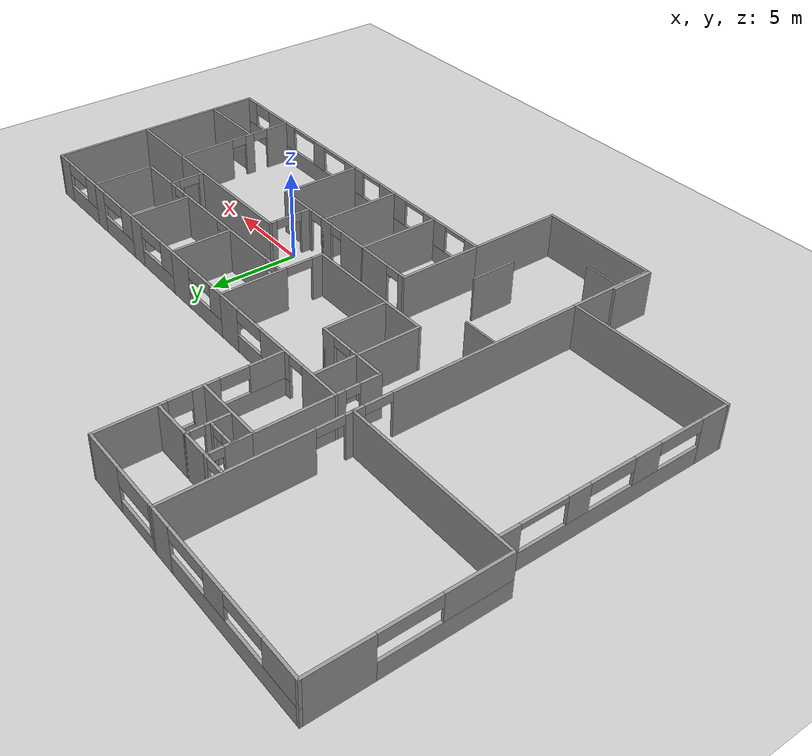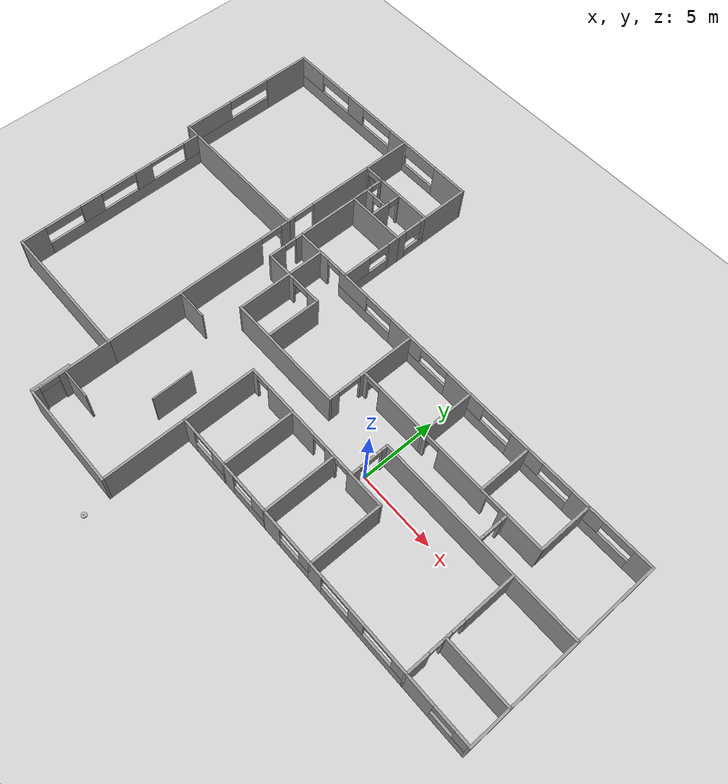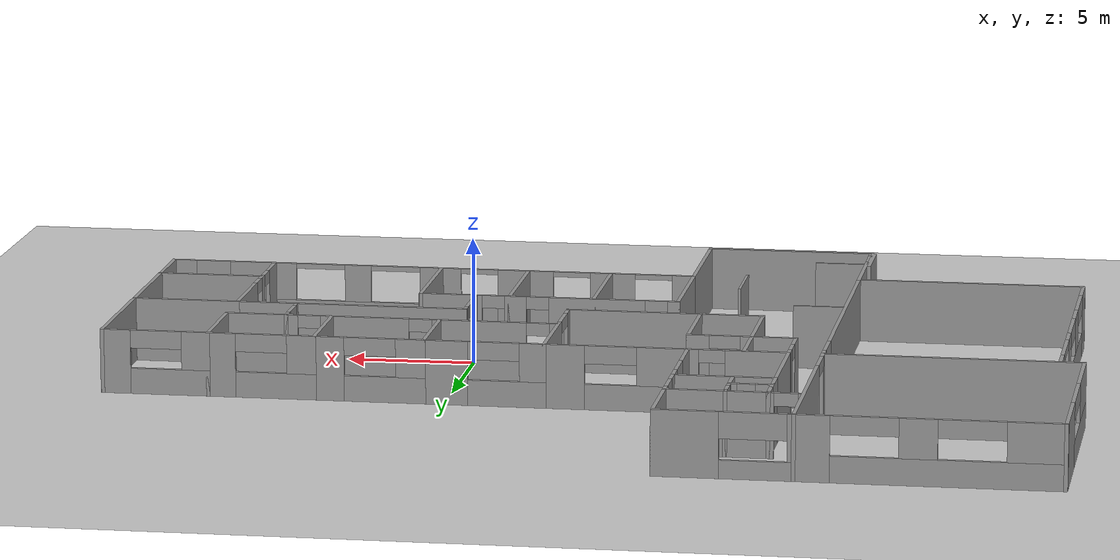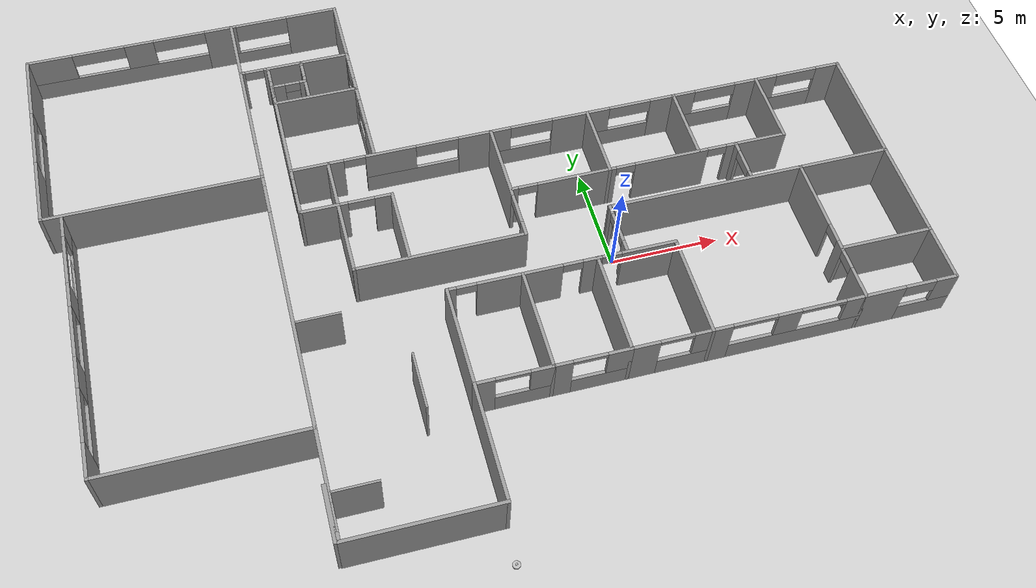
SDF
<sdf version="1.5">
 <world name="default">
  <include><uri>model://sun</uri></include>
  <include><uri>model://ground_plane</uri></include>
  <include><uri>model://iRobot</uri><pose>-8 -12.7 0.05 0 0 0</pose></include>
  <include><uri>model://CentroPiaggio</uri><name>CentroPiaggioMap</name></include>
 </world>
</sdf>

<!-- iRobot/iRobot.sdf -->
<sdf version='1.5'>
  <model name='iRobot'>
    <link name='base_link'>
      <pose>0 0 0 0 -0 0</pose>
      <inertial>
        <pose>1.39958e-05 0 6.49804e-08 0 -0 0</pose>
        <mass>10.003</mass>
        <inertia>
          <ixx>0.425054</ixx>
          <ixy>0</ixy>
          <ixz>-5.59999e-06</ixz>
          <iyy>0.425033</iyy>
          <iyz>-4.08016e-18</iyz>
          <izz>0.850071</izz>
        </inertia>
      </inertial>
      <collision name='base_link_collision'>
        <pose>0 0 0 0 -0 0</pose>
        <geometry>
          <cylinder>
            <length>0.08</length>
            <radius>0.17</radius>
          </cylinder>
        </geometry>
      </collision>
      <collision name='base_link_collision_base_link_1'>
        <pose>0.14 0 0.04 0 -0 0</pose>
        <geometry>
          <cylinder>
            <length>0.01</length>
            <radius>0.01</radius>
          </cylinder>
        </geometry>
      </collision>
      <collision name='base_link_collision_base_link_2'>
        <pose>0 0 0.065 0 -0 0</pose>
        <geometry>
          <cylinder>
            <length>0.05</length>
            <radius>0.045</radius>
          </cylinder>
        </geometry>
      </collision>
      <collision name='base_link_collision_base_link_3'>
        <pose>0 0.14 -0.02 -1.5708 0 0</pose>
        <geometry>
          <cylinder>
            <length>0.02</length>
            <radius>0.0025</radius>
          </cylinder>
        </geometry>
      </collision>
      <collision name='base_link_collision_base_link_4'>
        <pose>0 -0.14 -0.02 -1.5708 0 0</pose>
        <geometry>
          <cylinder>
            <length>0.02</length>
            <radius>0.0025</radius>
          </cylinder>
        </geometry>
      </collision>
      <visual name='base_link_visual'>
        <pose>0 0 0 0 -0 0</pose>
        <geometry>
          <cylinder>
            <length>0.08</length>
            <radius>0.17</radius>
          </cylinder>
        </geometry>
      </visual>
      <visual name='base_link_visual_base_link_1'>
        <pose>0.14 0 0.04 0 -0 0</pose>
        <geometry>
          <cylinder>
            <length>0.01</length>
            <radius>0.01</radius>
          </cylinder>
        </geometry>
      </visual>
      <visual name='base_link_visual_base_link_2'>
        <pose>0 0 0.065 0 -0 0</pose>
        <geometry>
          <cylinder>
            <length>0.05</length>
            <radius>0.045</radius>
          </cylinder>
        </geometry>
      </visual>
      <visual name='base_link_visual_base_link_3'>
        <pose>0 0.14 -0.02 -1.5708 0 0</pose>
        <geometry>
          <cylinder>
            <length>0.02</length>
            <radius>0.0025</radius>
          </cylinder>
        </geometry>
      </visual>
      <visual name='base_link_visual_base_link_4'>
        <pose>0 -0.14 -0.02 -1.5708 0 0</pose>
        <geometry>
          <cylinder>
            <length>0.02</length>
            <radius>0.0025</radius>
          </cylinder>
        </geometry>
      </visual>
      <velocity_decay/>
      <velocity_decay/>
      <gravity>1</gravity>
      <gravity>1</gravity>
      <velocity_decay/>
      <self_collide>0</self_collide>
      <gravity>1</gravity>
      <sensor name='head_sensor' type='ray'>
        <visualize>1</visualize>
        <update_rate>40</update_rate>
        <ray>
          <scan>
            <horizontal>
              <samples>2160</samples>
              <resolution>1</resolution>
              <min_angle>-3.14159</min_angle>
              <max_angle>3.14159</max_angle>
            </horizontal>
          </scan>
          <range>
            <min>0.2</min>
            <max>26</max>
            <resolution>0.01</resolution>
          </range>
          <noise>
            <type>gaussian</type>
            <mean>0</mean>
            <stddev>0</stddev>
          </noise>
        </ray>
        <plugin name='gazebo_ros_head_hokuyo_controller' filename='libgazebo_ros_laser.so'>
          <robotNamespace/>
          <topicName>laser_scan</topicName>
          <frameName>laser_link</frameName>
        </plugin>
        <pose>0 0 0.065 0 -0 0</pose>
      </sensor>
    </link>
    <link name='left_wheel_link'>
      <pose>0 0.14 -0.02 0 -0 0</pose>
      <inertial>
        <pose>0 0.01 0 -1.5708 0 0</pose>
        <mass>0.5</mass>
        <inertia>
          <ixx>0.00375</ixx>
          <ixy>0</ixy>
          <ixz>0</ixz>
          <iyy>0.00375</iyy>
          <iyz>0</iyz>
          <izz>0.00125</izz>
        </inertia>
      </inertial>
      <collision name='left_wheel_link_collision'>
        <pose>0 0 0 -1.5708 0 0</pose>
        <geometry>
          <cylinder>
            <length>0.02</length>
            <radius>0.03</radius>
          </cylinder>
        </geometry>
        <max_contacts>1</max_contacts>
        <surface>
          <contact>
            <ode>
              <kp>1e+07</kp>
              <kd>1</kd>
              <min_depth>0.0001</min_depth>
            </ode>
          </contact>
          <friction>
            <ode>
              <mu>50</mu>
              <mu2>10</mu2>
              <fdir1>1 0 0</fdir1>
            </ode>
          </friction>
        </surface>
      </collision>
      <visual name='left_wheel_link_visual'>
        <pose>0 0 0 -1.5708 0 0</pose>
        <geometry>
          <cylinder>
            <length>0.02</length>
            <radius>0.03</radius>
          </cylinder>
        </geometry>
        <material>
          <script>
            <name>Gazebo/Grey</name>
            <uri>__default__</uri>
          </script>
        </material>
      </visual>
      <gravity>1</gravity>
      <velocity_decay/>
      <self_collide>0</self_collide>
      <gravity>1</gravity>
    </link>
    <joint name='left_wheel_rot_joint' type='revolute'>
      <child>left_wheel_link</child>
      <parent>base_link</parent>
      <axis>
        <xyz>0 1 0</xyz>
        <limit>
          <lower>-1e+16</lower>
          <upper>1e+16</upper>
        </limit>
        <dynamics>
          <spring_reference>0</spring_reference>
          <spring_stiffness>0</spring_stiffness>
        </dynamics>
        <use_parent_model_frame>1</use_parent_model_frame>
      </axis>
    </joint>
    <link name='right_wheel_link'>
      <pose>0 -0.14 -0.02 0 -0 0</pose>
      <inertial>
        <pose>0 0.01 0 -1.5708 0 0</pose>
        <mass>0.5</mass>
        <inertia>
          <ixx>0.00375</ixx>
          <ixy>0</ixy>
          <ixz>0</ixz>
          <iyy>0.00375</iyy>
          <iyz>0</iyz>
          <izz>0.00125</izz>
        </inertia>
      </inertial>
      <collision name='right_wheel_link_collision'>
        <pose>0 0 0 -1.5708 0 0</pose>
        <geometry>
          <cylinder>
            <length>0.02</length>
            <radius>0.03</radius>
          </cylinder>
        </geometry>
        <max_contacts>1</max_contacts>
        <surface>
          <contact>
            <ode>
              <kp>1e+07</kp>
              <kd>1</kd>
              <min_depth>0.0001</min_depth>
            </ode>
          </contact>
          <friction>
            <ode>
              <mu>50</mu>
              <mu2>10</mu2>
              <fdir1>1 0 0</fdir1>
            </ode>
          </friction>
        </surface>
      </collision>
      <visual name='right_wheel_link_visual'>
        <pose>0 0 0 -1.5708 0 0</pose>
        <geometry>
          <cylinder>
            <length>0.02</length>
            <radius>0.03</radius>
          </cylinder>
        </geometry>
        <material>
          <script>
            <name>Gazebo/Grey</name>
            <uri>__default__</uri>
          </script>
        </material>
      </visual>
      <gravity>1</gravity>
      <velocity_decay/>
      <self_collide>0</self_collide>
      <gravity>1</gravity>
    </link>
    <joint name='right_wheel_rot_joint' type='revolute'>
      <child>right_wheel_link</child>
      <parent>base_link</parent>
      <axis>
        <xyz>0 1 0</xyz>
        <limit>
          <lower>-1e+16</lower>
          <upper>1e+16</upper>
        </limit>
        <dynamics>
          <spring_reference>0</spring_reference>
          <spring_stiffness>0</spring_stiffness>
        </dynamics>
        <use_parent_model_frame>1</use_parent_model_frame>
      </axis>
    </joint>
    <link name='sphere1'>
      <pose>0.14 0 -0.04 0 -0 0</pose>
      <inertial>
        <pose>0 0 0 0 -0 0</pose>
        <mass>0.3</mass>
        <inertia>
          <ixx>0.0012</ixx>
          <ixy>0</ixy>
          <ixz>0</ixz>
          <iyy>0.0012</iyy>
          <iyz>0</iyz>
          <izz>0.0012</izz>
        </inertia>
      </inertial>
      <collision name='sphere1_collision'>
        <pose>0 0 0 0 -0 0</pose>
        <geometry>
          <sphere>
            <radius>0.01</radius>
          </sphere>
        </geometry>
        <max_contacts>1</max_contacts>
        <surface>
          <contact>
            <ode>
              <kp>1e+07</kp>
              <kd>1</kd>
              <min_depth>0.0001</min_depth>
            </ode>
          </contact>
          <friction>
            <ode>
              <mu>0</mu>
              <mu2>0</mu2>
              <fdir1>1 0 0</fdir1>
            </ode>
          </friction>
        </surface>
      </collision>
      <visual name='sphere1_visual'>
        <pose>0 0 0 0 -0 0</pose>
        <geometry>
          <sphere>
            <radius>0.01</radius>
          </sphere>
        </geometry>
        <material>
          <script>
            <name>Gazebo/Grey</name>
            <uri>__default__</uri>
          </script>
        </material>
      </visual>
      <gravity>1</gravity>
      <velocity_decay/>
      <self_collide>0</self_collide>
      <gravity>1</gravity>
    </link>
    <joint name='sphere_joint1' type='revolute'>
      <child>sphere1</child>
      <parent>base_link</parent>
      <axis>
        <xyz>0 0 1</xyz>
        <limit>
          <lower>0</lower>
          <upper>0</upper>
          <effort>100</effort>
          <velocity>100</velocity>
        </limit>
        <dynamics>
          <spring_reference>0</spring_reference>
          <spring_stiffness>0</spring_stiffness>
        </dynamics>
        <use_parent_model_frame>1</use_parent_model_frame>
      </axis>
    </joint>
    <link name='sphere2'>
      <pose>-0.14 0 -0.04 0 -0 0</pose>
      <inertial>
        <pose>0 0 0 0 -0 0</pose>
        <mass>0.3</mass>
        <inertia>
          <ixx>0.0012</ixx>
          <ixy>0</ixy>
          <ixz>0</ixz>
          <iyy>0.0012</iyy>
          <iyz>0</iyz>
          <izz>0.0012</izz>
        </inertia>
      </inertial>
      <collision name='sphere2_collision'>
        <pose>0 0 0 0 -0 0</pose>
        <geometry>
          <sphere>
            <radius>0.01</radius>
          </sphere>
        </geometry>
        <max_contacts>1</max_contacts>
        <surface>
          <contact>
            <ode>
              <kp>1e+07</kp>
              <kd>1</kd>
              <min_depth>0.0001</min_depth>
            </ode>
          </contact>
          <friction>
            <ode>
              <mu>0</mu>
              <mu2>0</mu2>
              <fdir1>1 0 0</fdir1>
            </ode>
          </friction>
        </surface>
      </collision>
      <visual name='sphere2_visual'>
        <pose>0 0 0 0 -0 0</pose>
        <geometry>
          <sphere>
            <radius>0.01</radius>
          </sphere>
        </geometry>
        <material>
          <script>
            <name>Gazebo/Grey</name>
            <uri>__default__</uri>
          </script>
        </material>
      </visual>
      <gravity>1</gravity>
      <velocity_decay/>
      <self_collide>0</self_collide>
      <gravity>1</gravity>
    </link>
    <joint name='sphere_joint2' type='revolute'>
      <child>sphere2</child>
      <parent>base_link</parent>
      <axis>
        <xyz>0 0 1</xyz>
        <limit>
          <lower>0</lower>
          <upper>0</upper>
          <effort>100</effort>
          <velocity>100</velocity>
        </limit>
        <dynamics>
          <spring_reference>0</spring_reference>
          <spring_stiffness>0</spring_stiffness>
        </dynamics>
        <use_parent_model_frame>1</use_parent_model_frame>
      </axis>
    </joint>
    <static>0</static>
    <plugin name='differential_drive_controller' filename='libgazebo_ros_diff_drive.so'>
      <rosDebugLevel>Debug</rosDebugLevel>
      <publishWheelTF>false</publishWheelTF>
      <publishWheelJointState>true</publishWheelJointState>
      <alwaysOn>true</alwaysOn>
      <leftJoint>left_wheel_rot_joint</leftJoint>
      <rightJoint>right_wheel_rot_joint</rightJoint>
      <wheelSeparation>0.28</wheelSeparation>
      <wheelDiameter>0.06</wheelDiameter>
      <torque>20</torque>
      <wheelAcceleration>1.8</wheelAcceleration>
      <commandTopic>cmd_vel</commandTopic>
      <odometryTopic>odom</odometryTopic>
      <odometryFrame>odom</odometryFrame>
      <odometrySource>encoder</odometrySource>
      <robotBaseFrame>base_link</robotBaseFrame>
      <updateRate>10.0</updateRate>
    </plugin>
    <plugin name='joint_state_publisher' filename='libgazebo_ros_joint_state_publisher.so'>
      <jointName>left_wheel_rot_joint, right_wheel_rot_joint</jointName>
      <updateRate>10.0</updateRate>
      <alwaysOn>true</alwaysOn>
    </plugin>
    <plugin name='imu_plugin' filename='libgazebo_ros_imu.so'>
      <bodyName>base_link</bodyName>
      <updateRate>100.0</updateRate>
      <topicName>imu_data</topicName>
      <serviceName>imu_service</serviceName>
      <gaussianNoise>0.1</gaussianNoise>
      <xyzOffset>0 0 0</xyzOffset>
      <rpyOffset>0 0 0</rpyOffset>
    </plugin>
  </model>
</sdf>
